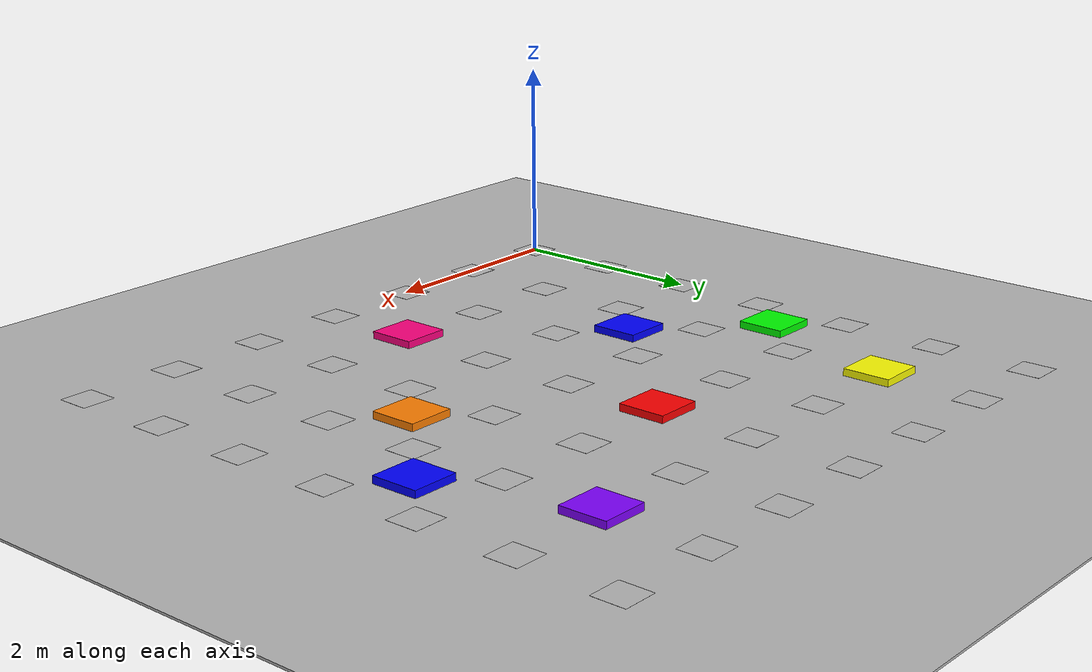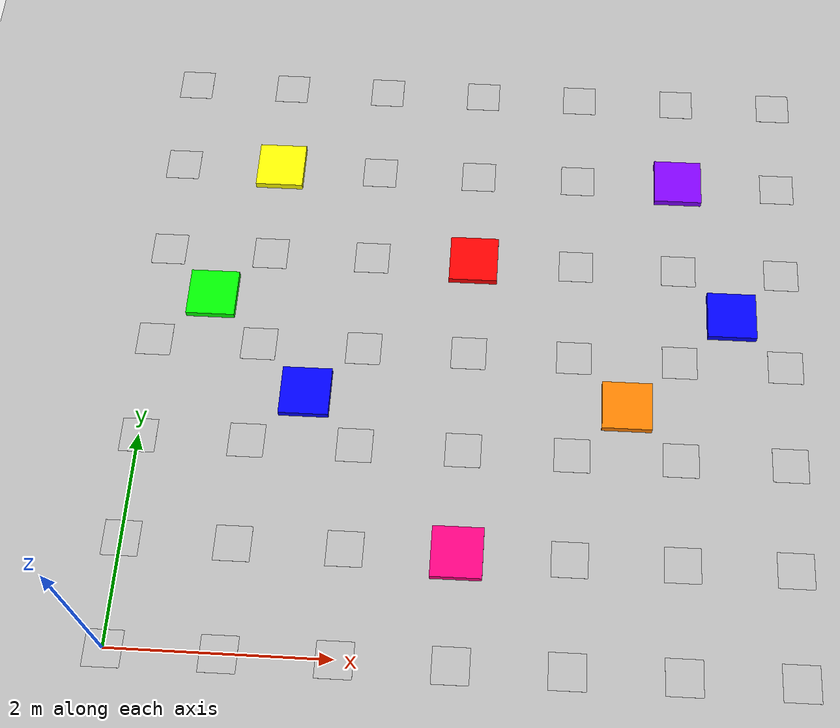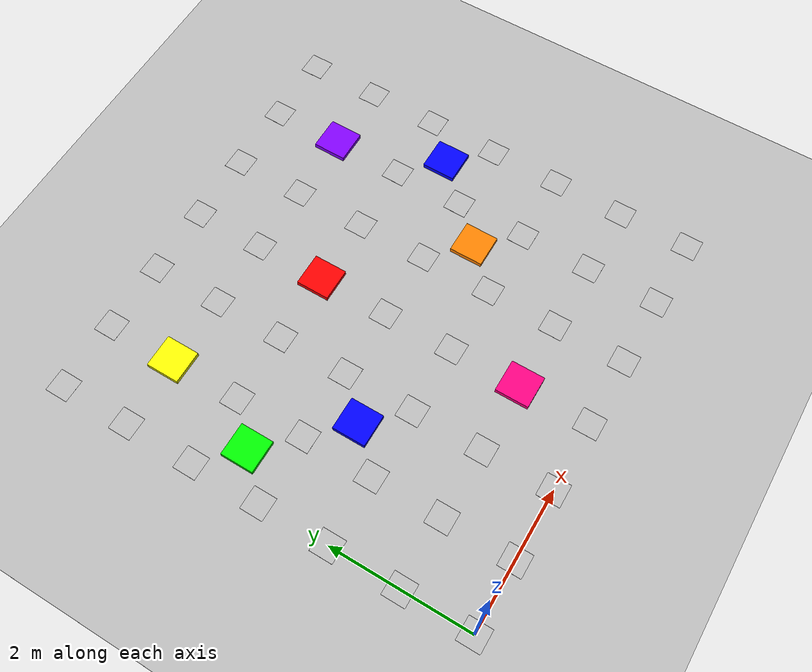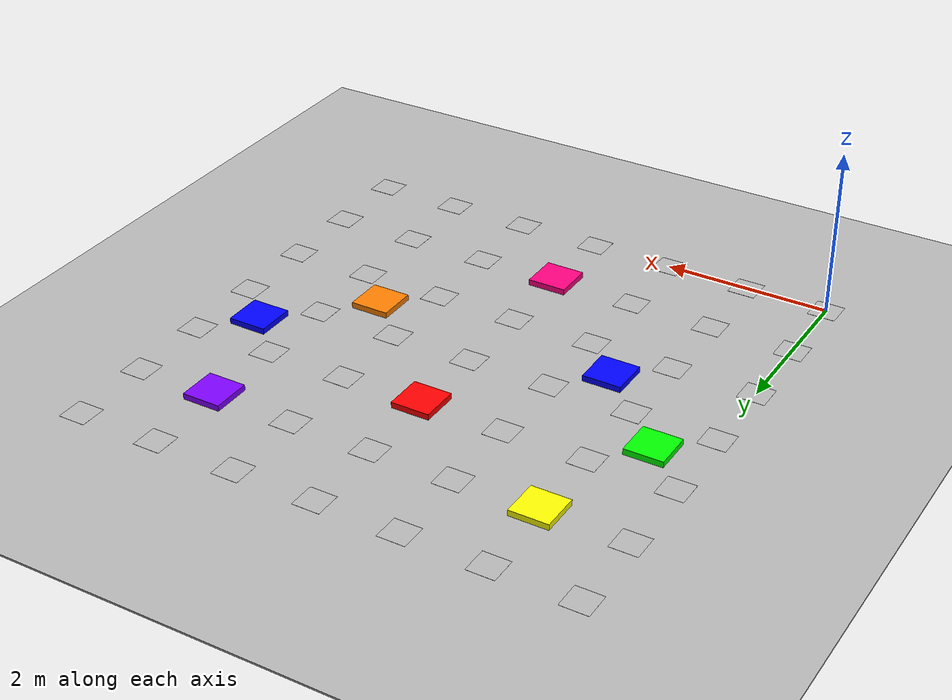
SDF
<sdf version="1.7">
 <world name="default">
  <model name="aruco_2_99">
   <static>1</static>
   <link name="aruco_2_99_link">
    <visual name="visual_marker_2_0">
     <pose>0 6 0 0 -0 1.5708</pose>
     <cast_shadows>0</cast_shadows>
     <geometry><box><size>0.33 0.33 0.001</size></box></geometry>
     <material>
      <script>
       <uri>model://aruco_cmit_txt/materials/scripts</uri>
       <uri>model://aruco_cmit_txt/materials/textures</uri>
       <name>aruco/marker_2_0</name>
      </script>
     </material>
    </visual>
    <visual name="visual_marker_2_1">
     <pose>1 6 0 0 -0 1.5708</pose>
     <cast_shadows>0</cast_shadows>
     <geometry><box><size>0.33 0.33 0.001</size></box></geometry>
     <material>
      <script>
       <uri>model://aruco_cmit_txt/materials/scripts</uri>
       <uri>model://aruco_cmit_txt/materials/textures</uri>
       <name>aruco/marker_2_1</name>
      </script>
     </material>
    </visual>
    <visual name="visual_marker_2_2">
     <pose>2 6 0 0 -0 1.5708</pose>
     <cast_shadows>0</cast_shadows>
     <geometry><box><size>0.33 0.33 0.001</size></box></geometry>
     <material>
      <script>
       <uri>model://aruco_cmit_txt/materials/scripts</uri>
       <uri>model://aruco_cmit_txt/materials/textures</uri>
       <name>aruco/marker_2_2</name>
      </script>
     </material>
    </visual>
    <visual name="visual_marker_2_3">
     <pose>3 6 0 0 -0 1.5708</pose>
     <cast_shadows>0</cast_shadows>
     <geometry><box><size>0.33 0.33 0.001</size></box></geometry>
     <material>
      <script>
       <uri>model://aruco_cmit_txt/materials/scripts</uri>
       <uri>model://aruco_cmit_txt/materials/textures</uri>
       <name>aruco/marker_2_3</name>
      </script>
     </material>
    </visual>
    <visual name="visual_marker_2_4">
     <pose>4 6 0 0 -0 1.5708</pose>
     <cast_shadows>0</cast_shadows>
     <geometry><box><size>0.33 0.33 0.001</size></box></geometry>
     <material>
      <script>
       <uri>model://aruco_cmit_txt/materials/scripts</uri>
       <uri>model://aruco_cmit_txt/materials/textures</uri>
       <name>aruco/marker_2_4</name>
      </script>
     </material>
    </visual>
    <visual name="visual_marker_2_5">
     <pose>5 6 0 0 -0 1.5708</pose>
     <cast_shadows>0</cast_shadows>
     <geometry><box><size>0.33 0.33 0.001</size></box></geometry>
     <material>
      <script>
       <uri>model://aruco_cmit_txt/materials/scripts</uri>
       <uri>model://aruco_cmit_txt/materials/textures</uri>
       <name>aruco/marker_2_5</name>
      </script>
     </material>
    </visual>
    <visual name="visual_marker_2_6">
     <pose>6 6 0 0 -0 1.5708</pose>
     <cast_shadows>0</cast_shadows>
     <geometry><box><size>0.33 0.33 0.001</size></box></geometry>
     <material>
      <script>
       <uri>model://aruco_cmit_txt/materials/scripts</uri>
       <uri>model://aruco_cmit_txt/materials/textures</uri>
       <name>aruco/marker_2_6</name>
      </script>
     </material>
    </visual>
    <visual name="visual_marker_2_7">
     <pose>0 5 0 0 -0 1.5708</pose>
     <cast_shadows>0</cast_shadows>
     <geometry><box><size>0.33 0.33 0.001</size></box></geometry>
     <material>
      <script>
       <uri>model://aruco_cmit_txt/materials/scripts</uri>
       <uri>model://aruco_cmit_txt/materials/textures</uri>
       <name>aruco/marker_2_7</name>
      </script>
     </material>
    </visual>
    <visual name="visual_marker_2_8">
     <pose>1 5 0 0 -0 1.5708</pose>
     <cast_shadows>0</cast_shadows>
     <geometry><box><size>0.33 0.33 0.001</size></box></geometry>
     <material>
      <script>
       <uri>model://aruco_cmit_txt/materials/scripts</uri>
       <uri>model://aruco_cmit_txt/materials/textures</uri>
       <name>aruco/marker_2_8</name>
      </script>
     </material>
    </visual>
    <visual name="visual_marker_2_9">
     <pose>2 5 0 0 -0 1.5708</pose>
     <cast_shadows>0</cast_shadows>
     <geometry><box><size>0.33 0.33 0.001</size></box></geometry>
     <material>
      <script>
       <uri>model://aruco_cmit_txt/materials/scripts</uri>
       <uri>model://aruco_cmit_txt/materials/textures</uri>
       <name>aruco/marker_2_9</name>
      </script>
     </material>
    </visual>
    <visual name="visual_marker_2_10">
     <pose>3 5 0 0 -0 1.5708</pose>
     <cast_shadows>0</cast_shadows>
     <geometry><box><size>0.33 0.33 0.001</size></box></geometry>
     <material>
      <script>
       <uri>model://aruco_cmit_txt/materials/scripts</uri>
       <uri>model://aruco_cmit_txt/materials/textures</uri>
       <name>aruco/marker_2_10</name>
      </script>
     </material>
    </visual>
    <visual name="visual_marker_2_11">
     <pose>4 5 0 0 -0 1.5708</pose>
     <cast_shadows>0</cast_shadows>
     <geometry><box><size>0.33 0.33 0.001</size></box></geometry>
     <material>
      <script>
       <uri>model://aruco_cmit_txt/materials/scripts</uri>
       <uri>model://aruco_cmit_txt/materials/textures</uri>
       <name>aruco/marker_2_11</name>
      </script>
     </material>
    </visual>
    <visual name="visual_marker_2_12">
     <pose>5 5 0 0 -0 1.5708</pose>
     <cast_shadows>0</cast_shadows>
     <geometry><box><size>0.33 0.33 0.001</size></box></geometry>
     <material>
      <script>
       <uri>model://aruco_cmit_txt/materials/scripts</uri>
       <uri>model://aruco_cmit_txt/materials/textures</uri>
       <name>aruco/marker_2_12</name>
      </script>
     </material>
    </visual>
    <visual name="visual_marker_2_13">
     <pose>6 5 0 0 -0 1.5708</pose>
     <cast_shadows>0</cast_shadows>
     <geometry><box><size>0.33 0.33 0.001</size></box></geometry>
     <material>
      <script>
       <uri>model://aruco_cmit_txt/materials/scripts</uri>
       <uri>model://aruco_cmit_txt/materials/textures</uri>
       <name>aruco/marker_2_13</name>
      </script>
     </material>
    </visual>
    <visual name="visual_marker_2_14">
     <pose>0 4 0 0 -0 1.5708</pose>
     <cast_shadows>0</cast_shadows>
     <geometry><box><size>0.33 0.33 0.001</size></box></geometry>
     <material>
      <script>
       <uri>model://aruco_cmit_txt/materials/scripts</uri>
       <uri>model://aruco_cmit_txt/materials/textures</uri>
       <name>aruco/marker_2_14</name>
      </script>
     </material>
    </visual>
    <visual name="visual_marker_2_15">
     <pose>1 4 0 0 -0 1.5708</pose>
     <cast_shadows>0</cast_shadows>
     <geometry><box><size>0.33 0.33 0.001</size></box></geometry>
     <material>
      <script>
       <uri>model://aruco_cmit_txt/materials/scripts</uri>
       <uri>model://aruco_cmit_txt/materials/textures</uri>
       <name>aruco/marker_2_15</name>
      </script>
     </material>
    </visual>
    <visual name="visual_marker_2_16">
     <pose>2 4 0 0 -0 1.5708</pose>
     <cast_shadows>0</cast_shadows>
     <geometry><box><size>0.33 0.33 0.001</size></box></geometry>
     <material>
      <script>
       <uri>model://aruco_cmit_txt/materials/scripts</uri>
       <uri>model://aruco_cmit_txt/materials/textures</uri>
       <name>aruco/marker_2_16</name>
      </script>
     </material>
    </visual>
    <visual name="visual_marker_2_17">
     <pose>3 4 0 0 -0 1.5708</pose>
     <cast_shadows>0</cast_shadows>
     <geometry><box><size>0.33 0.33 0.001</size></box></geometry>
     <material>
      <script>
       <uri>model://aruco_cmit_txt/materials/scripts</uri>
       <uri>model://aruco_cmit_txt/materials/textures</uri>
       <name>aruco/marker_2_17</name>
      </script>
     </material>
    </visual>
    <visual name="visual_marker_2_18">
     <pose>4 4 0 0 -0 1.5708</pose>
     <cast_shadows>0</cast_shadows>
     <geometry><box><size>0.33 0.33 0.001</size></box></geometry>
     <material>
      <script>
       <uri>model://aruco_cmit_txt/materials/scripts</uri>
       <uri>model://aruco_cmit_txt/materials/textures</uri>
       <name>aruco/marker_2_18</name>
      </script>
     </material>
    </visual>
    <visual name="visual_marker_2_19">
     <pose>5 4 0 0 -0 1.5708</pose>
     <cast_shadows>0</cast_shadows>
     <geometry><box><size>0.33 0.33 0.001</size></box></geometry>
     <material>
      <script>
       <uri>model://aruco_cmit_txt/materials/scripts</uri>
       <uri>model://aruco_cmit_txt/materials/textures</uri>
       <name>aruco/marker_2_19</name>
      </script>
     </material>
    </visual>
    <visual name="visual_marker_2_20">
     <pose>6 4 0 0 -0 1.5708</pose>
     <cast_shadows>0</cast_shadows>
     <geometry><box><size>0.33 0.33 0.001</size></box></geometry>
     <material>
      <script>
       <uri>model://aruco_cmit_txt/materials/scripts</uri>
       <uri>model://aruco_cmit_txt/materials/textures</uri>
       <name>aruco/marker_2_20</name>
      </script>
     </material>
    </visual>
    <visual name="visual_marker_2_21">
     <pose>0 3 0 0 -0 1.5708</pose>
     <cast_shadows>0</cast_shadows>
     <geometry><box><size>0.33 0.33 0.001</size></box></geometry>
     <material>
      <script>
       <uri>model://aruco_cmit_txt/materials/scripts</uri>
       <uri>model://aruco_cmit_txt/materials/textures</uri>
       <name>aruco/marker_2_21</name>
      </script>
     </material>
    </visual>
    <visual name="visual_marker_2_22">
     <pose>1 3 0 0 -0 1.5708</pose>
     <cast_shadows>0</cast_shadows>
     <geometry><box><size>0.33 0.33 0.001</size></box></geometry>
     <material>
      <script>
       <uri>model://aruco_cmit_txt/materials/scripts</uri>
       <uri>model://aruco_cmit_txt/materials/textures</uri>
       <name>aruco/marker_2_22</name>
      </script>
     </material>
    </visual>
    <visual name="visual_marker_2_23">
     <pose>2 3 0 0 -0 1.5708</pose>
     <cast_shadows>0</cast_shadows>
     <geometry><box><size>0.33 0.33 0.001</size></box></geometry>
     <material>
      <script>
       <uri>model://aruco_cmit_txt/materials/scripts</uri>
       <uri>model://aruco_cmit_txt/materials/textures</uri>
       <name>aruco/marker_2_23</name>
      </script>
     </material>
    </visual>
    <visual name="visual_marker_2_24">
     <pose>3 3 0 0 -0 1.5708</pose>
     <cast_shadows>0</cast_shadows>
     <geometry><box><size>0.33 0.33 0.001</size></box></geometry>
     <material>
      <script>
       <uri>model://aruco_cmit_txt/materials/scripts</uri>
       <uri>model://aruco_cmit_txt/materials/textures</uri>
       <name>aruco/marker_2_24</name>
      </script>
     </material>
    </visual>
    <visual name="visual_marker_2_25">
     <pose>4 3 0 0 -0 1.5708</pose>
     <cast_shadows>0</cast_shadows>
     <geometry><box><size>0.33 0.33 0.001</size></box></geometry>
     <material>
      <script>
       <uri>model://aruco_cmit_txt/materials/scripts</uri>
       <uri>model://aruco_cmit_txt/materials/textures</uri>
       <name>aruco/marker_2_25</name>
      </script>
     </material>
    </visual>
    <visual name="visual_marker_2_26">
     <pose>5 3 0 0 -0 1.5708</pose>
     <cast_shadows>0</cast_shadows>
     <geometry><box><size>0.33 0.33 0.001</size></box></geometry>
     <material>
      <script>
       <uri>model://aruco_cmit_txt/materials/scripts</uri>
       <uri>model://aruco_cmit_txt/materials/textures</uri>
       <name>aruco/marker_2_26</name>
      </script>
     </material>
    </visual>
    <visual name="visual_marker_2_27">
     <pose>6 3 0 0 -0 1.5708</pose>
     <cast_shadows>0</cast_shadows>
     <geometry><box><size>0.33 0.33 0.001</size></box></geometry>
     <material>
      <script>
       <uri>model://aruco_cmit_txt/materials/scripts</uri>
       <uri>model://aruco_cmit_txt/materials/textures</uri>
       <name>aruco/marker_2_27</name>
      </script>
     </material>
    </visual>
    <visual name="visual_marker_2_28">
     <pose>0 2 0 0 -0 1.5708</pose>
     <cast_shadows>0</cast_shadows>
     <geometry><box><size>0.33 0.33 0.001</size></box></geometry>
     <material>
      <script>
       <uri>model://aruco_cmit_txt/materials/scripts</uri>
       <uri>model://aruco_cmit_txt/materials/textures</uri>
       <name>aruco/marker_2_28</name>
      </script>
     </material>
    </visual>
    <visual name="visual_marker_2_29">
     <pose>1 2 0 0 -0 1.5708</pose>
     <cast_shadows>0</cast_shadows>
     <geometry><box><size>0.33 0.33 0.001</size></box></geometry>
     <material>
      <script>
       <uri>model://aruco_cmit_txt/materials/scripts</uri>
       <uri>model://aruco_cmit_txt/materials/textures</uri>
       <name>aruco/marker_2_29</name>
      </script>
     </material>
    </visual>
    <visual name="visual_marker_2_30">
     <pose>2 2 0 0 -0 1.5708</pose>
     <cast_shadows>0</cast_shadows>
     <geometry><box><size>0.33 0.33 0.001</size></box></geometry>
     <material>
      <script>
       <uri>model://aruco_cmit_txt/materials/scripts</uri>
       <uri>model://aruco_cmit_txt/materials/textures</uri>
       <name>aruco/marker_2_30</name>
      </script>
     </material>
    </visual>
    <visual name="visual_marker_2_31">
     <pose>3 2 0 0 -0 1.5708</pose>
     <cast_shadows>0</cast_shadows>
     <geometry><box><size>0.33 0.33 0.001</size></box></geometry>
     <material>
      <script>
       <uri>model://aruco_cmit_txt/materials/scripts</uri>
       <uri>model://aruco_cmit_txt/materials/textures</uri>
       <name>aruco/marker_2_31</name>
      </script>
     </material>
    </visual>
    <visual name="visual_marker_2_32">
     <pose>4 2 0 0 -0 1.5708</pose>
     <cast_shadows>0</cast_shadows>
     <geometry><box><size>0.33 0.33 0.001</size></box></geometry>
     <material>
      <script>
       <uri>model://aruco_cmit_txt/materials/scripts</uri>
       <uri>model://aruco_cmit_txt/materials/textures</uri>
       <name>aruco/marker_2_32</name>
      </script>
     </material>
    </visual>
    <visual name="visual_marker_2_33">
     <pose>5 2 0 0 -0 1.5708</pose>
     <cast_shadows>0</cast_shadows>
     <geometry><box><size>0.33 0.33 0.001</size></box></geometry>
     <material>
      <script>
       <uri>model://aruco_cmit_txt/materials/scripts</uri>
       <uri>model://aruco_cmit_txt/materials/textures</uri>
       <name>aruco/marker_2_33</name>
      </script>
     </material>
    </visual>
    <visual name="visual_marker_2_34">
     <pose>6 2 0 0 -0 1.5708</pose>
     <cast_shadows>0</cast_shadows>
     <geometry><box><size>0.33 0.33 0.001</size></box></geometry>
     <material>
      <script>
       <uri>model://aruco_cmit_txt/materials/scripts</uri>
       <uri>model://aruco_cmit_txt/materials/textures</uri>
       <name>aruco/marker_2_34</name>
      </script>
     </material>
    </visual>
    <visual name="visual_marker_2_35">
     <pose>0 1 0 0 -0 1.5708</pose>
     <cast_shadows>0</cast_shadows>
     <geometry><box><size>0.33 0.33 0.001</size></box></geometry>
     <material>
      <script>
       <uri>model://aruco_cmit_txt/materials/scripts</uri>
       <uri>model://aruco_cmit_txt/materials/textures</uri>
       <name>aruco/marker_2_35</name>
      </script>
     </material>
    </visual>
    <visual name="visual_marker_2_36">
     <pose>1 1 0 0 -0 1.5708</pose>
     <cast_shadows>0</cast_shadows>
     <geometry><box><size>0.33 0.33 0.001</size></box></geometry>
     <material>
      <script>
       <uri>model://aruco_cmit_txt/materials/scripts</uri>
       <uri>model://aruco_cmit_txt/materials/textures</uri>
       <name>aruco/marker_2_36</name>
      </script>
     </material>
    </visual>
    <visual name="visual_marker_2_37">
     <pose>2 1 0 0 -0 1.5708</pose>
     <cast_shadows>0</cast_shadows>
     <geometry><box><size>0.33 0.33 0.001</size></box></geometry>
     <material>
      <script>
       <uri>model://aruco_cmit_txt/materials/scripts</uri>
       <uri>model://aruco_cmit_txt/materials/textures</uri>
       <name>aruco/marker_2_37</name>
      </script>
     </material>
    </visual>
    <visual name="visual_marker_2_38">
     <pose>3 1 0 0 -0 1.5708</pose>
     <cast_shadows>0</cast_shadows>
     <geometry><box><size>0.33 0.33 0.001</size></box></geometry>
     <material>
      <script>
       <uri>model://aruco_cmit_txt/materials/scripts</uri>
       <uri>model://aruco_cmit_txt/materials/textures</uri>
       <name>aruco/marker_2_38</name>
      </script>
     </material>
    </visual>
    <visual name="visual_marker_2_39">
     <pose>4 1 0 0 -0 1.5708</pose>
     <cast_shadows>0</cast_shadows>
     <geometry><box><size>0.33 0.33 0.001</size></box></geometry>
     <material>
      <script>
       <uri>model://aruco_cmit_txt/materials/scripts</uri>
       <uri>model://aruco_cmit_txt/materials/textures</uri>
       <name>aruco/marker_2_39</name>
      </script>
     </material>
    </visual>
    <visual name="visual_marker_2_40">
     <pose>5 1 0 0 -0 1.5708</pose>
     <cast_shadows>0</cast_shadows>
     <geometry><box><size>0.33 0.33 0.001</size></box></geometry>
     <material>
      <script>
       <uri>model://aruco_cmit_txt/materials/scripts</uri>
       <uri>model://aruco_cmit_txt/materials/textures</uri>
       <name>aruco/marker_2_40</name>
      </script>
     </material>
    </visual>
    <visual name="visual_marker_2_41">
     <pose>6 1 0 0 -0 1.5708</pose>
     <cast_shadows>0</cast_shadows>
     <geometry><box><size>0.33 0.33 0.001</size></box></geometry>
     <material>
      <script>
       <uri>model://aruco_cmit_txt/materials/scripts</uri>
       <uri>model://aruco_cmit_txt/materials/textures</uri>
       <name>aruco/marker_2_41</name>
      </script>
     </material>
    </visual>
    <visual name="visual_marker_2_42">
     <pose>0 0 0 0 -0 1.5708</pose>
     <cast_shadows>0</cast_shadows>
     <geometry><box><size>0.33 0.33 0.001</size></box></geometry>
     <material>
      <script>
       <uri>model://aruco_cmit_txt/materials/scripts</uri>
       <uri>model://aruco_cmit_txt/materials/textures</uri>
       <name>aruco/marker_2_42</name>
      </script>
     </material>
    </visual>
    <visual name="visual_marker_2_43">
     <pose>1 0 0 0 -0 1.5708</pose>
     <cast_shadows>0</cast_shadows>
     <geometry><box><size>0.33 0.33 0.001</size></box></geometry>
     <material>
      <script>
       <uri>model://aruco_cmit_txt/materials/scripts</uri>
       <uri>model://aruco_cmit_txt/materials/textures</uri>
       <name>aruco/marker_2_43</name>
      </script>
     </material>
    </visual>
    <visual name="visual_marker_2_44">
     <pose>2 0 0 0 -0 1.5708</pose>
     <cast_shadows>0</cast_shadows>
     <geometry><box><size>0.33 0.33 0.001</size></box></geometry>
     <material>
      <script>
       <uri>model://aruco_cmit_txt/materials/scripts</uri>
       <uri>model://aruco_cmit_txt/materials/textures</uri>
       <name>aruco/marker_2_44</name>
      </script>
     </material>
    </visual>
    <visual name="visual_marker_2_45">
     <pose>3 0 0 0 -0 1.5708</pose>
     <cast_shadows>0</cast_shadows>
     <geometry><box><size>0.33 0.33 0.001</size></box></geometry>
     <material>
      <script>
       <uri>model://aruco_cmit_txt/materials/scripts</uri>
       <uri>model://aruco_cmit_txt/materials/textures</uri>
       <name>aruco/marker_2_45</name>
      </script>
     </material>
    </visual>
    <visual name="visual_marker_2_46">
     <pose>4 0 0 0 -0 1.5708</pose>
     <cast_shadows>0</cast_shadows>
     <geometry><box><size>0.33 0.33 0.001</size></box></geometry>
     <material>
      <script>
       <uri>model://aruco_cmit_txt/materials/scripts</uri>
       <uri>model://aruco_cmit_txt/materials/textures</uri>
       <name>aruco/marker_2_46</name>
      </script>
     </material>
    </visual>
    <visual name="visual_marker_2_47">
     <pose>5 0 0 0 -0 1.5708</pose>
     <cast_shadows>0</cast_shadows>
     <geometry><box><size>0.33 0.33 0.001</size></box></geometry>
     <material>
      <script>
       <uri>model://aruco_cmit_txt/materials/scripts</uri>
       <uri>model://aruco_cmit_txt/materials/textures</uri>
       <name>aruco/marker_2_47</name>
      </script>
     </material>
    </visual>
    <visual name="visual_marker_2_48">
     <pose>6 0 0 0 -0 1.5708</pose>
     <cast_shadows>0</cast_shadows>
     <geometry><box><size>0.33 0.33 0.001</size></box></geometry>
     <material>
      <script>
       <uri>model://aruco_cmit_txt/materials/scripts</uri>
       <uri>model://aruco_cmit_txt/materials/textures</uri>
       <name>aruco/marker_2_48</name>
      </script>
     </material>
    </visual>
   </link>
  </model>
  <light name="sun" type="directional">
   <pose>0 0 10 0 -0 0</pose>
   <diffuse>0.8 0.8 0.8 1</diffuse>
   <specular>0.2 0.2 0.2 1</specular>
   <attenuation>
    <range>1000</range>
    <constant>0.9</constant>
    <linear>0.01</linear>
    <quadratic>0.001</quadratic>
   </attenuation>
   <direction>-0.5 0.1 -0.9</direction>
   <spot><inner_angle>0</inner_angle><outer_angle>0</outer_angle><falloff>0</falloff></spot>
  </light>
  <model name="parquet_plane">
   <static>1</static>
   <link name="link">
    <collision name="collision"><geometry><box><size>200 200 0.02</size></box></geometry></collision>
    <visual name="visual">
     <cast_shadows>0</cast_shadows>
     <geometry><box><size>200 200 0.02</size></box></geometry>
     <material>
      <script>
       <uri>model://parquet_plane/materials/scripts</uri>
       <uri>model://parquet_plane/materials/textures</uri>
       <name>parquet</name>
      </script>
     </material>
    </visual>
   </link>
   <pose>0 0 -0.01 0 -0 0</pose>
  </model>
  <scene>
   <ambient>0.8 0.8 0.8 1</ambient>
   <background>0.8 0.9 1 1</background>
   <shadows>0</shadows>
   <grid>0</grid>
   <origin_visual>0</origin_visual>
  </scene>
  <physics name="default_physics" default="0" type="ode">
   <ode>
    <solver>
     <type>quick</type>
     <iters>10</iters>
     <sor>1.3</sor>
     <use_dynamic_moi_rescaling>0</use_dynamic_moi_rescaling>
    </solver>
    <constraints>
     <cfm>0</cfm>
     <erp>0.2</erp>
     <contact_max_correcting_vel>100</contact_max_correcting_vel>
     <contact_surface_layer>0.001</contact_surface_layer>
    </constraints>
   </ode>
   <max_step_size>0.004</max_step_size>
   <real_time_factor>1</real_time_factor>
   <real_time_update_rate>250</real_time_update_rate>
  </physics>
  <gravity>0 0 -9.8066</gravity>
  <magnetic_field>6e-06 2.3e-05 -4.2e-05</magnetic_field>
  <atmosphere type="adiabatic"/>
  <spherical_coordinates>
   <surface_model>EARTH_WGS84</surface_model>
   <latitude_deg>0</latitude_deg>
   <longitude_deg>0</longitude_deg>
   <elevation>0</elevation>
   <heading_deg>0</heading_deg>
  </spherical_coordinates>
  <model name="red_box">
   <link name="link">
    <inertial>
     <mass>1</mass>
     <inertia>
      <ixx>0.166667</ixx>
      <ixy>0</ixy>
      <ixz>0</ixz>
      <iyy>0.166667</iyy>
      <iyz>0</iyz>
      <izz>0.166667</izz>
     </inertia>
    </inertial>
    <visual name="visual">
     <geometry><box><size>0.465232 0.471118 0.070321</size></box></geometry>
     <material>
      <script><name>Gazebo/Grey</name><uri>file://media/materials/scripts/gazebo.material</uri></script>
      <shader type="pixel"><normal_map>__default__</normal_map></shader>
      <ambient>1 0 0 0</ambient>
      <diffuse>1 0 0 1</diffuse>
      <specular>1 0 0 1</specular>
      <emissive>0 0 0 1</emissive>
     </material>
    </visual>
    <collision name="collision">
     <geometry><box><size>0.465232 0.471118 0.070321</size></box></geometry>
     <surface>
      <friction>
       <ode><mu>1</mu><mu2>1</mu2><fdir1>0 0 0</fdir1><slip1>0</slip1><slip2>0</slip2></ode>
       <torsional>
        <coefficient>1</coefficient>
        <patch_radius>0</patch_radius>
        <surface_radius>0</surface_radius>
        <use_patch_radius>1</use_patch_radius>
        <ode><slip>0</slip></ode>
       </torsional>
      </friction>
      <bounce><restitution_coefficient>0</restitution_coefficient><threshold>1e+06</threshold></bounce>
      <contact>
       <collide_without_contact>0</collide_without_contact>
       <collide_without_contact_bitmask>1</collide_without_contact_bitmask>
       <collide_bitmask>1</collide_bitmask>
       <ode>
        <soft_cfm>0</soft_cfm>
        <soft_erp>0.2</soft_erp>
        <kp>1e+13</kp>
        <kd>1</kd>
        <max_vel>0.01</max_vel>
        <min_depth>0</min_depth>
       </ode>
       <bullet>
        <split_impulse>1</split_impulse>
        <split_impulse_penetration_threshold>-0.01</split_impulse_penetration_threshold>
        <soft_cfm>0</soft_cfm>
        <soft_erp>0.2</soft_erp>
        <kp>1e+13</kp>
        <kd>1</kd>
       </bullet>
      </contact>
     </surface>
    </collision>
   </link>
   <static>0</static>
   <pose>2.99999 3.99994 0.035161 1e-06 -0 -7.1e-05</pose>
  </model>
  <model name="yellow_box">
   <link name="link">
    <inertial>
     <mass>1</mass>
     <inertia>
      <ixx>0.166667</ixx>
      <ixy>0</ixy>
      <ixz>0</ixz>
      <iyy>0.166667</iyy>
      <iyz>0</iyz>
      <izz>0.166667</izz>
     </inertia>
    </inertial>
    <visual name="visual">
     <geometry><box><size>0.465232 0.471118 0.070321</size></box></geometry>
     <material>
      <script><name>Gazebo/Grey</name><uri>file://media/materials/scripts/gazebo.material</uri></script>
      <shader type="pixel"><normal_map>__default__</normal_map></shader>
      <ambient>1 1 0 0</ambient>
      <diffuse>1 1 0 1</diffuse>
      <specular>0.01 0.01 0.01 1</specular>
      <emissive>0 0 0 1</emissive>
     </material>
    </visual>
    <collision name="collision">
     <geometry><box><size>0.465232 0.471118 0.070321</size></box></geometry>
     <surface>
      <friction>
       <ode><mu>1</mu><mu2>1</mu2><fdir1>0 0 0</fdir1><slip1>0</slip1><slip2>0</slip2></ode>
       <torsional>
        <coefficient>1</coefficient>
        <patch_radius>0</patch_radius>
        <surface_radius>0</surface_radius>
        <use_patch_radius>1</use_patch_radius>
        <ode><slip>0</slip></ode>
       </torsional>
      </friction>
      <bounce><restitution_coefficient>0</restitution_coefficient><threshold>1e+06</threshold></bounce>
      <contact>
       <collide_without_contact>0</collide_without_contact>
       <collide_without_contact_bitmask>1</collide_without_contact_bitmask>
       <collide_bitmask>1</collide_bitmask>
       <ode>
        <soft_cfm>0</soft_cfm>
        <soft_erp>0.2</soft_erp>
        <kp>1e+13</kp>
        <kd>1</kd>
        <max_vel>0.01</max_vel>
        <min_depth>0</min_depth>
       </ode>
       <bullet>
        <split_impulse>1</split_impulse>
        <split_impulse_penetration_threshold>-0.01</split_impulse_penetration_threshold>
        <soft_cfm>0</soft_cfm>
        <soft_erp>0.2</soft_erp>
        <kp>1e+13</kp>
        <kd>1</kd>
       </bullet>
      </contact>
     </surface>
    </collision>
   </link>
   <static>0</static>
   <pose>1 5 0.035161 1e-06 -0 -7.2e-05</pose>
  </model>
  <model name="green_box">
   <link name="link">
    <inertial>
     <mass>1</mass>
     <inertia>
      <ixx>0.166667</ixx>
      <ixy>0</ixy>
      <ixz>0</ixz>
      <iyy>0.166667</iyy>
      <iyz>0</iyz>
      <izz>0.166667</izz>
     </inertia>
    </inertial>
    <visual name="visual">
     <geometry><box><size>0.465232 0.471118 0.070321</size></box></geometry>
     <material>
      <script><name>Gazebo/Grey</name><uri>file://media/materials/scripts/gazebo.material</uri></script>
      <shader type="pixel"><normal_map>__default__</normal_map></shader>
      <ambient>0 1 0 0</ambient>
      <diffuse>0 1 0 1</diffuse>
      <specular>0.01 0.01 0.01 1</specular>
      <emissive>0 0 0 1</emissive>
     </material>
    </visual>
    <collision name="collision">
     <geometry><box><size>0.465232 0.471118 0.070321</size></box></geometry>
     <surface>
      <friction>
       <ode><mu>1</mu><mu2>1</mu2><fdir1>0 0 0</fdir1><slip1>0</slip1><slip2>0</slip2></ode>
       <torsional>
        <coefficient>1</coefficient>
        <patch_radius>0</patch_radius>
        <surface_radius>0</surface_radius>
        <use_patch_radius>1</use_patch_radius>
        <ode><slip>0</slip></ode>
       </torsional>
      </friction>
      <bounce><restitution_coefficient>0</restitution_coefficient><threshold>1e+06</threshold></bounce>
      <contact>
       <collide_without_contact>0</collide_without_contact>
       <collide_without_contact_bitmask>1</collide_without_contact_bitmask>
       <collide_bitmask>1</collide_bitmask>
       <ode>
        <soft_cfm>0</soft_cfm>
        <soft_erp>0.2</soft_erp>
        <kp>1e+13</kp>
        <kd>1</kd>
        <max_vel>0.01</max_vel>
        <min_depth>0</min_depth>
       </ode>
       <bullet>
        <split_impulse>1</split_impulse>
        <split_impulse_penetration_threshold>-0.01</split_impulse_penetration_threshold>
        <soft_cfm>0</soft_cfm>
        <soft_erp>0.2</soft_erp>
        <kp>1e+13</kp>
        <kd>1</kd>
       </bullet>
      </contact>
     </surface>
    </collision>
   </link>
   <static>0</static>
   <pose>0.5 3.5 0.035161 1e-06 -0 -7.2e-05</pose>
  </model>
  <model name="blue_light_box">
   <link name="link">
    <inertial>
     <mass>1</mass>
     <inertia>
      <ixx>0.166667</ixx>
      <ixy>0</ixy>
      <ixz>0</ixz>
      <iyy>0.166667</iyy>
      <iyz>0</iyz>
      <izz>0.166667</izz>
     </inertia>
    </inertial>
    <visual name="visual">
     <geometry><box><size>0.465232 0.471118 0.070321</size></box></geometry>
     <material>
      <script><name>Gazebo/Grey</name><uri>file://media/materials/scripts/gazebo.material</uri></script>
      <shader type="pixel"><normal_map>__default__</normal_map></shader>
      <ambient>0 1 1 1</ambient>
      <diffuse>0 0 1 1</diffuse>
      <specular>0.01 0.01 0.01 1</specular>
      <emissive>0 0 0 1</emissive>
     </material>
    </visual>
    <collision name="collision">
     <geometry><box><size>0.465232 0.471118 0.070321</size></box></geometry>
     <surface>
      <friction>
       <ode><mu>1</mu><mu2>1</mu2><fdir1>0 0 0</fdir1><slip1>0</slip1><slip2>0</slip2></ode>
       <torsional>
        <coefficient>1</coefficient>
        <patch_radius>0</patch_radius>
        <surface_radius>0</surface_radius>
        <use_patch_radius>1</use_patch_radius>
        <ode><slip>0</slip></ode>
       </torsional>
      </friction>
      <bounce><restitution_coefficient>0</restitution_coefficient><threshold>1e+06</threshold></bounce>
      <contact>
       <collide_without_contact>0</collide_without_contact>
       <collide_without_contact_bitmask>1</collide_without_contact_bitmask>
       <collide_bitmask>1</collide_bitmask>
       <ode>
        <soft_cfm>0</soft_cfm>
        <soft_erp>0.2</soft_erp>
        <kp>1e+13</kp>
        <kd>1</kd>
        <max_vel>0.01</max_vel>
        <min_depth>0</min_depth>
       </ode>
       <bullet>
        <split_impulse>1</split_impulse>
        <split_impulse_penetration_threshold>-0.01</split_impulse_penetration_threshold>
        <soft_cfm>0</soft_cfm>
        <soft_erp>0.2</soft_erp>
        <kp>1e+13</kp>
        <kd>1</kd>
       </bullet>
      </contact>
     </surface>
    </collision>
   </link>
   <static>0</static>
   <pose>5.5 3.5 0.035161 1e-06 -0 -7.2e-05</pose>
  </model>
  <model name="blue_box">
   <link name="link">
    <inertial>
     <mass>1</mass>
     <inertia>
      <ixx>0.166667</ixx>
      <ixy>0</ixy>
      <ixz>0</ixz>
      <iyy>0.166667</iyy>
      <iyz>0</iyz>
      <izz>0.166667</izz>
     </inertia>
    </inertial>
    <visual name="visual">
     <geometry><box><size>0.465232 0.471118 0.070321</size></box></geometry>
     <material>
      <script><name>Gazebo/Grey</name><uri>file://media/materials/scripts/gazebo.material</uri></script>
      <shader type="pixel"><normal_map>__default__</normal_map></shader>
      <ambient>0 0 1 0</ambient>
      <diffuse>0 0 1 1</diffuse>
      <specular>0.01 0.01 0.01 1</specular>
      <emissive>0 0 0 1</emissive>
     </material>
    </visual>
    <collision name="collision">
     <geometry><box><size>0.465232 0.471118 0.070321</size></box></geometry>
     <surface>
      <friction>
       <ode><mu>1</mu><mu2>1</mu2><fdir1>0 0 0</fdir1><slip1>0</slip1><slip2>0</slip2></ode>
       <torsional>
        <coefficient>1</coefficient>
        <patch_radius>0</patch_radius>
        <surface_radius>0</surface_radius>
        <use_patch_radius>1</use_patch_radius>
        <ode><slip>0</slip></ode>
       </torsional>
      </friction>
      <bounce><restitution_coefficient>0</restitution_coefficient><threshold>1e+06</threshold></bounce>
      <contact>
       <collide_without_contact>0</collide_without_contact>
       <collide_without_contact_bitmask>1</collide_without_contact_bitmask>
       <collide_bitmask>1</collide_bitmask>
       <ode>
        <soft_cfm>0</soft_cfm>
        <soft_erp>0.2</soft_erp>
        <kp>1e+13</kp>
        <kd>1</kd>
        <max_vel>0.01</max_vel>
        <min_depth>0</min_depth>
       </ode>
       <bullet>
        <split_impulse>1</split_impulse>
        <split_impulse_penetration_threshold>-0.01</split_impulse_penetration_threshold>
        <soft_cfm>0</soft_cfm>
        <soft_erp>0.2</soft_erp>
        <kp>1e+13</kp>
        <kd>1</kd>
       </bullet>
      </contact>
     </surface>
    </collision>
   </link>
   <static>0</static>
   <pose>1.5 2.5 0.035161 1e-06 -0 -7.2e-05</pose>
  </model>
  <model name="orange_box">
   <link name="link">
    <inertial>
     <mass>1</mass>
     <inertia>
      <ixx>0.166667</ixx>
      <ixy>0</ixy>
      <ixz>0</ixz>
      <iyy>0.166667</iyy>
      <iyz>0</iyz>
      <izz>0.166667</izz>
     </inertia>
    </inertial>
    <visual name="visual">
     <geometry><box><size>0.465232 0.471118 0.070321</size></box></geometry>
     <material>
      <script><name>Gazebo/Grey</name><uri>file://media/materials/scripts/gazebo.material</uri></script>
      <shader type="pixel"><normal_map>__default__</normal_map></shader>
      <ambient>1 0.5 0 0</ambient>
      <diffuse>1 0.5 0 1</diffuse>
      <specular>0.01 0.01 0.01 1</specular>
      <emissive>0 0 0 1</emissive>
     </material>
    </visual>
    <collision name="collision">
     <geometry><box><size>0.465232 0.471118 0.070321</size></box></geometry>
     <surface>
      <friction>
       <ode><mu>1</mu><mu2>1</mu2><fdir1>0 0 0</fdir1><slip1>0</slip1><slip2>0</slip2></ode>
       <torsional>
        <coefficient>1</coefficient>
        <patch_radius>0</patch_radius>
        <surface_radius>0</surface_radius>
        <use_patch_radius>1</use_patch_radius>
        <ode><slip>0</slip></ode>
       </torsional>
      </friction>
      <bounce><restitution_coefficient>0</restitution_coefficient><threshold>1e+06</threshold></bounce>
      <contact>
       <collide_without_contact>0</collide_without_contact>
       <collide_without_contact_bitmask>1</collide_without_contact_bitmask>
       <collide_bitmask>1</collide_bitmask>
       <ode>
        <soft_cfm>0</soft_cfm>
        <soft_erp>0.2</soft_erp>
        <kp>1e+13</kp>
        <kd>1</kd>
        <max_vel>0.01</max_vel>
        <min_depth>0</min_depth>
       </ode>
       <bullet>
        <split_impulse>1</split_impulse>
        <split_impulse_penetration_threshold>-0.01</split_impulse_penetration_threshold>
        <soft_cfm>0</soft_cfm>
        <soft_erp>0.2</soft_erp>
        <kp>1e+13</kp>
        <kd>1</kd>
       </bullet>
      </contact>
     </surface>
    </collision>
   </link>
   <static>0</static>
   <pose>4.5 2.5 0.035161 1e-06 -0 -7.2e-05</pose>
  </model>
  <model name="pink_box">
   <link name="link">
    <inertial>
     <mass>1</mass>
     <inertia>
      <ixx>0.166667</ixx>
      <ixy>0</ixy>
      <ixz>0</ixz>
      <iyy>0.166667</iyy>
      <iyz>0</iyz>
      <izz>0.166667</izz>
     </inertia>
    </inertial>
    <visual name="visual">
     <geometry><box><size>0.465232 0.471118 0.070321</size></box></geometry>
     <material>
      <script><name>Gazebo/Grey</name><uri>file://media/materials/scripts/gazebo.material</uri></script>
      <shader type="pixel"><normal_map>__default__</normal_map></shader>
      <ambient>1 0 0.5 0</ambient>
      <diffuse>1 0 0.5 1</diffuse>
      <specular>0.01 0.01 0.01 1</specular>
      <emissive>0 0 0 1</emissive>
     </material>
    </visual>
    <collision name="collision">
     <geometry><box><size>0.465232 0.471118 0.070321</size></box></geometry>
     <surface>
      <friction>
       <ode><mu>1</mu><mu2>1</mu2><fdir1>0 0 0</fdir1><slip1>0</slip1><slip2>0</slip2></ode>
       <torsional>
        <coefficient>1</coefficient>
        <patch_radius>0</patch_radius>
        <surface_radius>0</surface_radius>
        <use_patch_radius>1</use_patch_radius>
        <ode><slip>0</slip></ode>
       </torsional>
      </friction>
      <bounce><restitution_coefficient>0</restitution_coefficient><threshold>1e+06</threshold></bounce>
      <contact>
       <collide_without_contact>0</collide_without_contact>
       <collide_without_contact_bitmask>1</collide_without_contact_bitmask>
       <collide_bitmask>1</collide_bitmask>
       <ode>
        <soft_cfm>0</soft_cfm>
        <soft_erp>0.2</soft_erp>
        <kp>1e+13</kp>
        <kd>1</kd>
        <max_vel>0.01</max_vel>
        <min_depth>0</min_depth>
       </ode>
       <bullet>
        <split_impulse>1</split_impulse>
        <split_impulse_penetration_threshold>-0.01</split_impulse_penetration_threshold>
        <soft_cfm>0</soft_cfm>
        <soft_erp>0.2</soft_erp>
        <kp>1e+13</kp>
        <kd>1</kd>
       </bullet>
      </contact>
     </surface>
    </collision>
   </link>
   <static>0</static>
   <pose>3 1 0.035161 1e-06 -0 -7.2e-05</pose>
  </model>
  <model name="violet_box">
   <link name="link">
    <inertial>
     <mass>1</mass>
     <inertia>
      <ixx>0.166667</ixx>
      <ixy>0</ixy>
      <ixz>0</ixz>
      <iyy>0.166667</iyy>
      <iyz>0</iyz>
      <izz>0.166667</izz>
     </inertia>
    </inertial>
    <visual name="visual">
     <geometry><box><size>0.465232 0.471118 0.070321</size></box></geometry>
     <material>
      <script><name>Gazebo/Grey</name><uri>file://media/materials/scripts/gazebo.material</uri></script>
      <shader type="pixel"><normal_map>__default__</normal_map></shader>
      <ambient>0.5 0 1 0</ambient>
      <diffuse>0.5 0 1 1</diffuse>
      <specular>0.01 0.01 0.01 1</specular>
      <emissive>0 0 0 1</emissive>
     </material>
    </visual>
    <collision name="collision">
     <geometry><box><size>0.465232 0.471118 0.070321</size></box></geometry>
     <surface>
      <friction>
       <ode><mu>1</mu><mu2>1</mu2><fdir1>0 0 0</fdir1><slip1>0</slip1><slip2>0</slip2></ode>
       <torsional>
        <coefficient>1</coefficient>
        <patch_radius>0</patch_radius>
        <surface_radius>0</surface_radius>
        <use_patch_radius>1</use_patch_radius>
        <ode><slip>0</slip></ode>
       </torsional>
      </friction>
      <bounce><restitution_coefficient>0</restitution_coefficient><threshold>1e+06</threshold></bounce>
      <contact>
       <collide_without_contact>0</collide_without_contact>
       <collide_without_contact_bitmask>1</collide_without_contact_bitmask>
       <collide_bitmask>1</collide_bitmask>
       <ode>
        <soft_cfm>0</soft_cfm>
        <soft_erp>0.2</soft_erp>
        <kp>1e+13</kp>
        <kd>1</kd>
        <max_vel>0.01</max_vel>
        <min_depth>0</min_depth>
       </ode>
       <bullet>
        <split_impulse>1</split_impulse>
        <split_impulse_penetration_threshold>-0.01</split_impulse_penetration_threshold>
        <soft_cfm>0</soft_cfm>
        <soft_erp>0.2</soft_erp>
        <kp>1e+13</kp>
        <kd>1</kd>
       </bullet>
      </contact>
     </surface>
    </collision>
   </link>
   <static>0</static>
   <pose>5 5 0.035161 1e-06 -0 -7.2e-05</pose>
  </model>
 </world>
</sdf>
